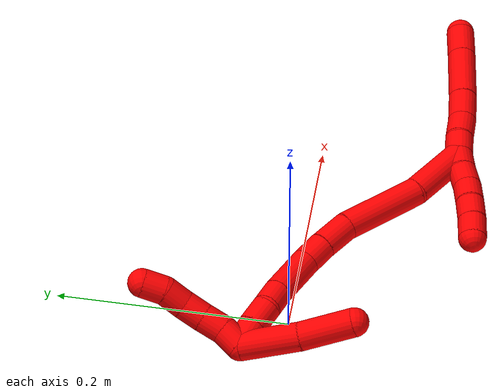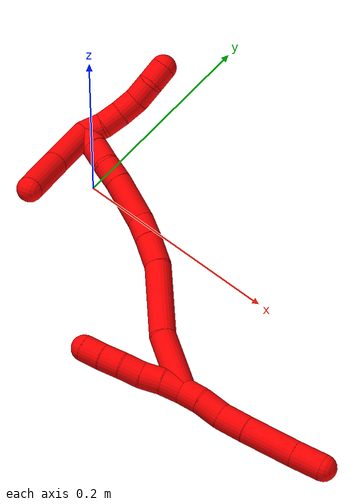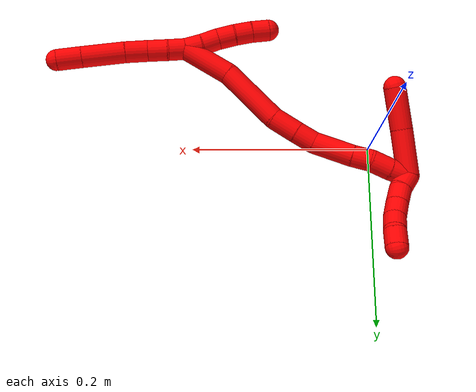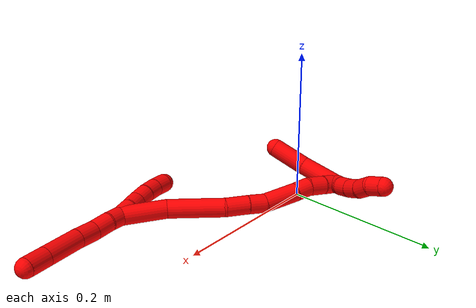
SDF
<sdf version="1.7">
 <world name="default">
  <model name="photoneo_s_sensor">
   <static>1</static>
   <pose>0 0 2 1.57079 1.57079 3.14159</pose>
   <link name="link">
    <inertial><mass>0.1</mass></inertial>
    <sensor name="sensor" type="depth">
     <update_rate>30</update_rate>
     <camera>
      <horizontal_fov>1.22</horizontal_fov>
      <image><width>1920</width><height>1200</height><format>B8G8R8</format></image>
      <clip><near>0.1</near><far>4</far></clip>
      <depth_camera><output>points</output></depth_camera>
     </camera>
     <plugin name="camera_plugin" filename="libgazebo_ros_depth_camera.so">
      <baseline>0.2</baseline>
      <alwaysOn>1</alwaysOn>
      <updateRate>0.0</updateRate>
      <cameraName>camera_ir</cameraName>
      <imageTopicName>/camera/color/image_raw</imageTopicName>
      <cameraInfoTopicName>/camera/color/camera_info</cameraInfoTopicName>
      <depthImageTopicName>/camera/depth/image_raw</depthImageTopicName>
      <depthImageCameraInfoTopicName>/camera/depth/camera_info</depthImageCameraInfoTopicName>
      <pointCloudTopicName>/camera/depth/points</pointCloudTopicName>
      <frameName>fr_optical</frameName>
      <pointCloudCutoff>0.1</pointCloudCutoff>
      <pointCloudCutoffMax>2.0</pointCloudCutoffMax>
      <distortionK1>0</distortionK1>
      <distortionK2>0</distortionK2>
      <distortionK3>0</distortionK3>
      <distortionT1>0</distortionT1>
      <distortionT2>0</distortionT2>
      <CxPrime>0</CxPrime>
      <Cx>0</Cx>
      <Cy>0</Cy>
      <focalLength>0</focalLength>
      <hackBaseline>0</hackBaseline>
     </plugin>
    </sensor>
   </link>
  </model>
  <model name="bin">
   <static>1</static>
   <link name="bottom">
    <collision name="collision-bottom">
     <pose>0 0 -0.01 0 -0 0</pose>
     <geometry><box><size>0.8 0.6 0.02</size></box></geometry>
     <surface>
      <friction><ode><mu>100</mu><mu2>100</mu2></ode></friction>
      <contact><collide_bitmask>65535</collide_bitmask></contact>
     </surface>
    </collision>
   </link>
   <link name="west_wall">
    <collision name="collision-west_wall">
     <pose>-0.41 0 0.1 0 -0 0</pose>
     <geometry><box><size>0.02 0.6 0.2</size></box></geometry>
     <surface>
      <friction><ode><mu>100</mu><mu2>100</mu2></ode></friction>
      <contact><collide_bitmask>65535</collide_bitmask></contact>
     </surface>
    </collision>
   </link>
   <link name="east_wall">
    <collision name="collision-east_wall">
     <pose>0.41 0 0.1 0 -0 0</pose>
     <geometry><box><size>0.02 0.6 0.2</size></box></geometry>
     <surface>
      <friction><ode><mu>100</mu><mu2>100</mu2></ode></friction>
      <contact><collide_bitmask>65535</collide_bitmask></contact>
     </surface>
    </collision>
   </link>
   <link name="south_wall">
    <collision name="collision-south_wall">
     <pose>0 -0.31 0.1 0 -0 0</pose>
     <geometry><box><size>0.8 0.02 0.2</size></box></geometry>
     <surface>
      <friction><ode><mu>100</mu><mu2>100</mu2></ode></friction>
      <contact><collide_bitmask>65535</collide_bitmask></contact>
     </surface>
    </collision>
   </link>
   <link name="north_wall">
    <collision name="collision-north_wall">
     <pose>0 0.31 0.1 0 -0 0</pose>
     <geometry><box><size>0.8 0.02 0.2</size></box></geometry>
     <surface>
      <friction><ode><mu>100</mu><mu2>100</mu2></ode></friction>
      <contact><collide_bitmask>65535</collide_bitmask></contact>
     </surface>
    </collision>
   </link>
  </model>
  <model name="2">
   <static>0</static>
   <link name="2">
    <collision name="collision-cylinder-e_1_2_8">
     <pose>0.000712 -0.001542 0.009906 0.154391 0.070867 0.005484</pose>
     <geometry><cylinder><radius>0.0125</radius><length>0.0201</length></cylinder></geometry>
     <surface>
      <friction><ode><mu>1.16</mu><mu2>1.16</mu2><slip1>0</slip1><slip2>0</slip2></ode></friction>
      <contact><ode><kp>1e+06</kp><kd>1</kd><max_vel>0</max_vel><min_depth>0.001</min_depth></ode></contact>
     </surface>
    </collision>
    <visual name="visual-cylinder-e_1_2_8">
     <pose>0.000712 -0.001542 0.009906 0.154391 0.070867 0.005484</pose>
     <geometry><cylinder><radius>0.0125</radius><length>0.0201</length></cylinder></geometry>
     <material><ambient>1 0 0 1</ambient></material>
    </visual>
    <collision name="collision-cylinder-e_2_8_9">
     <pose>0.004151 -0.004695 0.031283 0.139592 0.231217 0.016236</pose>
     <geometry><cylinder><radius>0.0125</radius><length>0.023802</length></cylinder></geometry>
     <surface>
      <friction><ode><mu>1.16</mu><mu2>1.16</mu2><slip1>0</slip1><slip2>0</slip2></ode></friction>
      <contact><ode><kp>1e+06</kp><kd>1</kd><max_vel>0</max_vel><min_depth>0.001</min_depth></ode></contact>
     </surface>
    </collision>
    <visual name="visual-cylinder-e_2_8_9">
     <pose>0.004151 -0.004695 0.031283 0.139592 0.231217 0.016236</pose>
     <geometry><cylinder><radius>0.0125</radius><length>0.023802</length></cylinder></geometry>
     <material><ambient>1 0 0 1</ambient></material>
    </visual>
    <collision name="collision-cylinder-e_3_9_10">
     <pose>0.007609 -0.008433 0.056043 0.158653 0.054248 0.004313</pose>
     <geometry><cylinder><radius>0.0125</radius><length>0.026955</length></cylinder></geometry>
     <surface>
      <friction><ode><mu>1.16</mu><mu2>1.16</mu2><slip1>0</slip1><slip2>0</slip2></ode></friction>
      <contact><ode><kp>1e+06</kp><kd>1</kd><max_vel>0</max_vel><min_depth>0.001</min_depth></ode></contact>
     </surface>
    </collision>
    <visual name="visual-cylinder-e_3_9_10">
     <pose>0.007609 -0.008433 0.056043 0.158653 0.054248 0.004313</pose>
     <geometry><cylinder><radius>0.0125</radius><length>0.026955</length></cylinder></geometry>
     <material><ambient>1 0 0 1</ambient></material>
    </visual>
    <collision name="collision-cylinder-e_4_10_11">
     <pose>0.009817 -0.013204 0.094206 0.105925 0.059001 0.003129</pose>
     <geometry><cylinder><radius>0.0125</radius><length>0.050118</length></cylinder></geometry>
     <surface>
      <friction><ode><mu>1.16</mu><mu2>1.16</mu2><slip1>0</slip1><slip2>0</slip2></ode></friction>
      <contact><ode><kp>1e+06</kp><kd>1</kd><max_vel>0</max_vel><min_depth>0.001</min_depth></ode></contact>
     </surface>
    </collision>
    <visual name="visual-cylinder-e_4_10_11">
     <pose>0.009817 -0.013204 0.094206 0.105925 0.059001 0.003129</pose>
     <geometry><cylinder><radius>0.0125</radius><length>0.050118</length></cylinder></geometry>
     <material><ambient>1 0 0 1</ambient></material>
    </visual>
    <collision name="collision-cylinder-e_5_11_6">
     <pose>0.011753 -0.0173 0.133514 0.100209 0.031608 0.001585</pose>
     <geometry><cylinder><radius>0.0125</radius><length>0.029026</length></cylinder></geometry>
     <surface>
      <friction><ode><mu>1.16</mu><mu2>1.16</mu2><slip1>0</slip1><slip2>0</slip2></ode></friction>
      <contact><ode><kp>1e+06</kp><kd>1</kd><max_vel>0</max_vel><min_depth>0.001</min_depth></ode></contact>
     </surface>
    </collision>
    <visual name="visual-cylinder-e_5_11_6">
     <pose>0.011753 -0.0173 0.133514 0.100209 0.031608 0.001585</pose>
     <geometry><cylinder><radius>0.0125</radius><length>0.029026</length></cylinder></geometry>
     <material><ambient>1 0 0 1</ambient></material>
    </visual>
    <collision name="collision-cylinder-e_1_2_12">
     <pose>-0.000889 -0.000521 -0.009947 3.08927 -0.088978 -2.07883</pose>
     <geometry><cylinder><radius>0.0125</radius><length>0.02</length></cylinder></geometry>
     <surface>
      <friction><ode><mu>1.16</mu><mu2>1.16</mu2><slip1>0</slip1><slip2>0</slip2></ode></friction>
      <contact><ode><kp>1e+06</kp><kd>1</kd><max_vel>0</max_vel><min_depth>0.001</min_depth></ode></contact>
     </surface>
    </collision>
    <visual name="visual-cylinder-e_1_2_12">
     <pose>-0.000889 -0.000521 -0.009947 3.08927 -0.088978 -2.07883</pose>
     <geometry><cylinder><radius>0.0125</radius><length>0.02</length></cylinder></geometry>
     <material><ambient>1 0 0 1</ambient></material>
    </visual>
    <collision name="collision-cylinder-e_2_12_13">
     <pose>-0.001423 -0.001979 -0.029843 3.04763 0.035439 0.720912</pose>
     <geometry><cylinder><radius>0.0125</radius><length>0.02</length></cylinder></geometry>
     <surface>
      <friction><ode><mu>1.16</mu><mu2>1.16</mu2><slip1>0</slip1><slip2>0</slip2></ode></friction>
      <contact><ode><kp>1e+06</kp><kd>1</kd><max_vel>0</max_vel><min_depth>0.001</min_depth></ode></contact>
     </surface>
    </collision>
    <visual name="visual-cylinder-e_2_12_13">
     <pose>-0.001423 -0.001979 -0.029843 3.04763 0.035439 0.720912</pose>
     <geometry><cylinder><radius>0.0125</radius><length>0.02</length></cylinder></geometry>
     <material><ambient>1 0 0 1</ambient></material>
    </visual>
    <collision name="collision-cylinder-e_3_13_14">
     <pose>-0.002135 -0.003298 -0.049729 3.10326 -0.10685 -2.45323</pose>
     <geometry><cylinder><radius>0.0125</radius><length>0.02</length></cylinder></geometry>
     <surface>
      <friction><ode><mu>1.16</mu><mu2>1.16</mu2><slip1>0</slip1><slip2>0</slip2></ode></friction>
      <contact><ode><kp>1e+06</kp><kd>1</kd><max_vel>0</max_vel><min_depth>0.001</min_depth></ode></contact>
     </surface>
    </collision>
    <visual name="visual-cylinder-e_3_13_14">
     <pose>-0.002135 -0.003298 -0.049729 3.10326 -0.10685 -2.45323</pose>
     <geometry><cylinder><radius>0.0125</radius><length>0.02</length></cylinder></geometry>
     <material><ambient>1 0 0 1</ambient></material>
    </visual>
    <collision name="collision-cylinder-e_4_14_15">
     <pose>-0.003395 -0.003229 -0.069652 -3.09658 -0.019303 0.810178</pose>
     <geometry><cylinder><radius>0.0125</radius><length>0.02</length></cylinder></geometry>
     <surface>
      <friction><ode><mu>1.16</mu><mu2>1.16</mu2><slip1>0</slip1><slip2>0</slip2></ode></friction>
      <contact><ode><kp>1e+06</kp><kd>1</kd><max_vel>0</max_vel><min_depth>0.001</min_depth></ode></contact>
     </surface>
    </collision>
    <visual name="visual-cylinder-e_4_14_15">
     <pose>-0.003395 -0.003229 -0.069652 -3.09658 -0.019303 0.810178</pose>
     <geometry><cylinder><radius>0.0125</radius><length>0.02</length></cylinder></geometry>
     <material><ambient>1 0 0 1</ambient></material>
    </visual>
    <collision name="collision-cylinder-e_5_15_5">
     <pose>-0.003946 -0.001504 -0.089552 -3.01359 -0.035863 0.5457</pose>
     <geometry><cylinder><radius>0.0125</radius><length>0.02</length></cylinder></geometry>
     <surface>
      <friction><ode><mu>1.16</mu><mu2>1.16</mu2><slip1>0</slip1><slip2>0</slip2></ode></friction>
      <contact><ode><kp>1e+06</kp><kd>1</kd><max_vel>0</max_vel><min_depth>0.001</min_depth></ode></contact>
     </surface>
    </collision>
    <visual name="visual-cylinder-e_5_15_5">
     <pose>-0.003946 -0.001504 -0.089552 -3.01359 -0.035863 0.5457</pose>
     <geometry><cylinder><radius>0.0125</radius><length>0.02</length></cylinder></geometry>
     <material><ambient>1 0 0 1</ambient></material>
    </visual>
    <collision name="collision-cylinder-e_1_2_16">
     <pose>-0.013931 0.017064 -0.020214 -2.44049 -0.484711 1.189</pose>
     <geometry><cylinder><radius>0.0125</radius><length>0.059796</length></cylinder></geometry>
     <surface>
      <friction><ode><mu>1.16</mu><mu2>1.16</mu2><slip1>0</slip1><slip2>0</slip2></ode></friction>
      <contact><ode><kp>1e+06</kp><kd>1</kd><max_vel>0</max_vel><min_depth>0.001</min_depth></ode></contact>
     </surface>
    </collision>
    <visual name="visual-cylinder-e_1_2_16">
     <pose>-0.013931 0.017064 -0.020214 -2.44049 -0.484711 1.189</pose>
     <geometry><cylinder><radius>0.0125</radius><length>0.059796</length></cylinder></geometry>
     <material><ambient>1 0 0 1</ambient></material>
    </visual>
    <collision name="collision-cylinder-e_2_16_17">
     <pose>-0.048057 0.0601 -0.058195 -2.17076 -0.570581 1.01486</pose>
     <geometry><cylinder><radius>0.0125</radius><length>0.074779</length></cylinder></geometry>
     <surface>
      <friction><ode><mu>1.16</mu><mu2>1.16</mu2><slip1>0</slip1><slip2>0</slip2></ode></friction>
      <contact><ode><kp>1e+06</kp><kd>1</kd><max_vel>0</max_vel><min_depth>0.001</min_depth></ode></contact>
     </surface>
    </collision>
    <visual name="visual-cylinder-e_2_16_17">
     <pose>-0.048057 0.0601 -0.058195 -2.17076 -0.570581 1.01486</pose>
     <geometry><cylinder><radius>0.0125</radius><length>0.074779</length></cylinder></geometry>
     <material><ambient>1 0 0 1</ambient></material>
    </visual>
    <collision name="collision-cylinder-e_3_17_18">
     <pose>-0.075139 0.09521 -0.086115 -2.40875 -0.466956 1.10957</pose>
     <geometry><cylinder><radius>0.0125</radius><length>0.030598</length></cylinder></geometry>
     <surface>
      <friction><ode><mu>1.16</mu><mu2>1.16</mu2><slip1>0</slip1><slip2>0</slip2></ode></friction>
      <contact><ode><kp>1e+06</kp><kd>1</kd><max_vel>0</max_vel><min_depth>0.001</min_depth></ode></contact>
     </surface>
    </collision>
    <visual name="visual-cylinder-e_3_17_18">
     <pose>-0.075139 0.09521 -0.086115 -2.40875 -0.466956 1.10957</pose>
     <geometry><cylinder><radius>0.0125</radius><length>0.030598</length></cylinder></geometry>
     <material><ambient>1 0 0 1</ambient></material>
    </visual>
    <collision name="collision-cylinder-e_4_18_19">
     <pose>-0.086467 0.111269 -0.104199 -2.42408 -0.39928 0.989625</pose>
     <geometry><cylinder><radius>0.0125</radius><length>0.022847</length></cylinder></geometry>
     <surface>
      <friction><ode><mu>1.16</mu><mu2>1.16</mu2><slip1>0</slip1><slip2>0</slip2></ode></friction>
      <contact><ode><kp>1e+06</kp><kd>1</kd><max_vel>0</max_vel><min_depth>0.001</min_depth></ode></contact>
     </surface>
    </collision>
    <visual name="visual-cylinder-e_4_18_19">
     <pose>-0.086467 0.111269 -0.104199 -2.42408 -0.39928 0.989625</pose>
     <geometry><cylinder><radius>0.0125</radius><length>0.022847</length></cylinder></geometry>
     <material><ambient>1 0 0 1</ambient></material>
    </visual>
    <collision name="collision-cylinder-e_5_19_20">
     <pose>-0.101686 0.127385 -0.130229 -2.67153 -0.488071 1.60987</pose>
     <geometry><cylinder><radius>0.0125</radius><length>0.04597</length></cylinder></geometry>
     <surface>
      <friction><ode><mu>1.16</mu><mu2>1.16</mu2><slip1>0</slip1><slip2>0</slip2></ode></friction>
      <contact><ode><kp>1e+06</kp><kd>1</kd><max_vel>0</max_vel><min_depth>0.001</min_depth></ode></contact>
     </surface>
    </collision>
    <visual name="visual-cylinder-e_5_19_20">
     <pose>-0.101686 0.127385 -0.130229 -2.67153 -0.488071 1.60987</pose>
     <geometry><cylinder><radius>0.0125</radius><length>0.04597</length></cylinder></geometry>
     <material><ambient>1 0 0 1</ambient></material>
    </visual>
    <collision name="collision-cylinder-e_6_20_21">
     <pose>-0.116931 0.140216 -0.157145 -2.75046 -0.438028 1.68708</pose>
     <geometry><cylinder><radius>0.0125</radius><length>0.021064</length></cylinder></geometry>
     <surface>
      <friction><ode><mu>1.16</mu><mu2>1.16</mu2><slip1>0</slip1><slip2>0</slip2></ode></friction>
      <contact><ode><kp>1e+06</kp><kd>1</kd><max_vel>0</max_vel><min_depth>0.001</min_depth></ode></contact>
     </surface>
    </collision>
    <visual name="visual-cylinder-e_6_20_21">
     <pose>-0.116931 0.140216 -0.157145 -2.75046 -0.438028 1.68708</pose>
     <geometry><cylinder><radius>0.0125</radius><length>0.021064</length></cylinder></geometry>
     <material><ambient>1 0 0 1</ambient></material>
    </visual>
    <collision name="collision-cylinder-e_7_21_22">
     <pose>-0.124793 0.150208 -0.174893 -2.52298 -0.30033 0.884401</pose>
     <geometry><cylinder><radius>0.0125</radius><length>0.02295</length></cylinder></geometry>
     <surface>
      <friction><ode><mu>1.16</mu><mu2>1.16</mu2><slip1>0</slip1><slip2>0</slip2></ode></friction>
      <contact><ode><kp>1e+06</kp><kd>1</kd><max_vel>0</max_vel><min_depth>0.001</min_depth></ode></contact>
     </surface>
    </collision>
    <visual name="visual-cylinder-e_7_21_22">
     <pose>-0.124793 0.150208 -0.174893 -2.52298 -0.30033 0.884401</pose>
     <geometry><cylinder><radius>0.0125</radius><length>0.02295</length></cylinder></geometry>
     <material><ambient>1 0 0 1</ambient></material>
    </visual>
    <collision name="collision-cylinder-e_8_22_1">
     <pose>-0.130532 0.162251 -0.192941 -2.58405 -0.214802 0.72049</pose>
     <geometry><cylinder><radius>0.0125</radius><length>0.021997</length></cylinder></geometry>
     <surface>
      <friction><ode><mu>1.16</mu><mu2>1.16</mu2><slip1>0</slip1><slip2>0</slip2></ode></friction>
      <contact><ode><kp>1e+06</kp><kd>1</kd><max_vel>0</max_vel><min_depth>0.001</min_depth></ode></contact>
     </surface>
    </collision>
    <visual name="visual-cylinder-e_8_22_1">
     <pose>-0.130532 0.162251 -0.192941 -2.58405 -0.214802 0.72049</pose>
     <geometry><cylinder><radius>0.0125</radius><length>0.021997</length></cylinder></geometry>
     <material><ambient>1 0 0 1</ambient></material>
    </visual>
    <collision name="collision-cylinder-e_1_1_23">
     <pose>-0.13888 0.171343 -0.194823 -0.439985 -0.643882 0.148893</pose>
     <geometry><cylinder><radius>0.0125</radius><length>0.02</length></cylinder></geometry>
     <surface>
      <friction><ode><mu>1.16</mu><mu2>1.16</mu2><slip1>0</slip1><slip2>0</slip2></ode></friction>
      <contact><ode><kp>1e+06</kp><kd>1</kd><max_vel>0</max_vel><min_depth>0.001</min_depth></ode></contact>
     </surface>
    </collision>
    <visual name="visual-cylinder-e_1_1_23">
     <pose>-0.13888 0.171343 -0.194823 -0.439985 -0.643882 0.148893</pose>
     <geometry><cylinder><radius>0.0125</radius><length>0.02</length></cylinder></geometry>
     <material><ambient>1 0 0 1</ambient></material>
    </visual>
    <collision name="collision-cylinder-e_2_23_24">
     <pose>-0.151792 0.179656 -0.182278 -0.746118 -0.762732 0.31135</pose>
     <geometry><cylinder><radius>0.0125</radius><length>0.02</length></cylinder></geometry>
     <surface>
      <friction><ode><mu>1.16</mu><mu2>1.16</mu2><slip1>0</slip1><slip2>0</slip2></ode></friction>
      <contact><ode><kp>1e+06</kp><kd>1</kd><max_vel>0</max_vel><min_depth>0.001</min_depth></ode></contact>
     </surface>
    </collision>
    <visual name="visual-cylinder-e_2_23_24">
     <pose>-0.151792 0.179656 -0.182278 -0.746118 -0.762732 0.31135</pose>
     <geometry><cylinder><radius>0.0125</radius><length>0.02</length></cylinder></geometry>
     <material><ambient>1 0 0 1</ambient></material>
    </visual>
    <collision name="collision-cylinder-e_3_24_25">
     <pose>-0.166337 0.18875 -0.172054 -0.705514 -0.868947 0.338416</pose>
     <geometry><cylinder><radius>0.0125</radius><length>0.02</length></cylinder></geometry>
     <surface>
      <friction><ode><mu>1.16</mu><mu2>1.16</mu2><slip1>0</slip1><slip2>0</slip2></ode></friction>
      <contact><ode><kp>1e+06</kp><kd>1</kd><max_vel>0</max_vel><min_depth>0.001</min_depth></ode></contact>
     </surface>
    </collision>
    <visual name="visual-cylinder-e_3_24_25">
     <pose>-0.166337 0.18875 -0.172054 -0.705514 -0.868947 0.338416</pose>
     <geometry><cylinder><radius>0.0125</radius><length>0.02</length></cylinder></geometry>
     <material><ambient>1 0 0 1</ambient></material>
    </visual>
    <collision name="collision-cylinder-e_4_25_26">
     <pose>-0.182859 0.195663 -0.16345 -0.63642 -1.09418 0.396028</pose>
     <geometry><cylinder><radius>0.0125</radius><length>0.02</length></cylinder></geometry>
     <surface>
      <friction><ode><mu>1.16</mu><mu2>1.16</mu2><slip1>0</slip1><slip2>0</slip2></ode></friction>
      <contact><ode><kp>1e+06</kp><kd>1</kd><max_vel>0</max_vel><min_depth>0.001</min_depth></ode></contact>
     </surface>
    </collision>
    <visual name="visual-cylinder-e_4_25_26">
     <pose>-0.182859 0.195663 -0.16345 -0.63642 -1.09418 0.396028</pose>
     <geometry><cylinder><radius>0.0125</radius><length>0.02</length></cylinder></geometry>
     <material><ambient>1 0 0 1</ambient></material>
    </visual>
    <collision name="collision-cylinder-e_5_26_4">
     <pose>-0.199454 0.204173 -0.157091 -1.13844 -0.880216 0.585338</pose>
     <geometry><cylinder><radius>0.0125</radius><length>0.02</length></cylinder></geometry>
     <surface>
      <friction><ode><mu>1.16</mu><mu2>1.16</mu2><slip1>0</slip1><slip2>0</slip2></ode></friction>
      <contact><ode><kp>1e+06</kp><kd>1</kd><max_vel>0</max_vel><min_depth>0.001</min_depth></ode></contact>
     </surface>
    </collision>
    <visual name="visual-cylinder-e_5_26_4">
     <pose>-0.199454 0.204173 -0.157091 -1.13844 -0.880216 0.585338</pose>
     <geometry><cylinder><radius>0.0125</radius><length>0.02</length></cylinder></geometry>
     <material><ambient>1 0 0 1</ambient></material>
    </visual>
    <collision name="collision-cylinder-e_1_1_27">
     <pose>-0.123562 0.143527 -0.204717 1.67924 0.36258 0.403135</pose>
     <geometry><cylinder><radius>0.0125</radius><length>0.052521</length></cylinder></geometry>
     <surface>
      <friction><ode><mu>1.16</mu><mu2>1.16</mu2><slip1>0</slip1><slip2>0</slip2></ode></friction>
      <contact><ode><kp>1e+06</kp><kd>1</kd><max_vel>0</max_vel><min_depth>0.001</min_depth></ode></contact>
     </surface>
    </collision>
    <visual name="visual-cylinder-e_1_1_27">
     <pose>-0.123562 0.143527 -0.204717 1.67924 0.36258 0.403135</pose>
     <geometry><cylinder><radius>0.0125</radius><length>0.052521</length></cylinder></geometry>
     <material><ambient>1 0 0 1</ambient></material>
    </visual>
    <collision name="collision-cylinder-e_2_27_3">
     <pose>-0.107798 0.096309 -0.208675 1.62776 0.275146 0.291061</pose>
     <geometry><cylinder><radius>0.0125</radius><length>0.047479</length></cylinder></geometry>
     <surface>
      <friction><ode><mu>1.16</mu><mu2>1.16</mu2><slip1>0</slip1><slip2>0</slip2></ode></friction>
      <contact><ode><kp>1e+06</kp><kd>1</kd><max_vel>0</max_vel><min_depth>0.001</min_depth></ode></contact>
     </surface>
    </collision>
    <visual name="visual-cylinder-e_2_27_3">
     <pose>-0.107798 0.096309 -0.208675 1.62776 0.275146 0.291061</pose>
     <geometry><cylinder><radius>0.0125</radius><length>0.047479</length></cylinder></geometry>
     <material><ambient>1 0 0 1</ambient></material>
    </visual>
    <collision name="collision-sphere-3">
     <pose>-0.101349 0.073499 -0.209975 0 -0 0</pose>
     <geometry><sphere><radius>0.0125</radius></sphere></geometry>
     <surface>
      <friction><ode><mu>1.16</mu><mu2>1.16</mu2><slip1>0</slip1><slip2>0</slip2></ode></friction>
      <contact><ode><kp>1e+06</kp><kd>1</kd><max_vel>0</max_vel><min_depth>0.001</min_depth></ode></contact>
     </surface>
    </collision>
    <visual name="visual-sphere-3">
     <pose>-0.101349 0.073499 -0.209975 0 -0 0</pose>
     <geometry><sphere><radius>0.0125</radius></sphere></geometry>
     <material><ambient>1 0 0 1</ambient></material>
    </visual>
    <collision name="collision-sphere-27">
     <pose>-0.114248 0.119118 -0.207374 0 -0 0</pose>
     <geometry><sphere><radius>0.0125</radius></sphere></geometry>
     <surface>
      <friction><ode><mu>1.16</mu><mu2>1.16</mu2><slip1>0</slip1><slip2>0</slip2></ode></friction>
      <contact><ode><kp>1e+06</kp><kd>1</kd><max_vel>0</max_vel><min_depth>0.001</min_depth></ode></contact>
     </surface>
    </collision>
    <visual name="visual-sphere-27">
     <pose>-0.114248 0.119118 -0.207374 0 -0 0</pose>
     <geometry><sphere><radius>0.0125</radius></sphere></geometry>
     <material><ambient>1 0 0 1</ambient></material>
    </visual>
    <collision name="collision-sphere-4">
     <pose>-0.207162 0.209957 -0.154422 0 -0 0</pose>
     <geometry><sphere><radius>0.0125</radius></sphere></geometry>
     <surface>
      <friction><ode><mu>1.16</mu><mu2>1.16</mu2><slip1>0</slip1><slip2>0</slip2></ode></friction>
      <contact><ode><kp>1e+06</kp><kd>1</kd><max_vel>0</max_vel><min_depth>0.001</min_depth></ode></contact>
     </surface>
    </collision>
    <visual name="visual-sphere-4">
     <pose>-0.207162 0.209957 -0.154422 0 -0 0</pose>
     <geometry><sphere><radius>0.0125</radius></sphere></geometry>
     <material><ambient>1 0 0 1</ambient></material>
    </visual>
    <collision name="collision-sphere-26">
     <pose>-0.191745 0.19839 -0.15976 0 -0 0</pose>
     <geometry><sphere><radius>0.0125</radius></sphere></geometry>
     <surface>
      <friction><ode><mu>1.16</mu><mu2>1.16</mu2><slip1>0</slip1><slip2>0</slip2></ode></friction>
      <contact><ode><kp>1e+06</kp><kd>1</kd><max_vel>0</max_vel><min_depth>0.001</min_depth></ode></contact>
     </surface>
    </collision>
    <visual name="visual-sphere-26">
     <pose>-0.191745 0.19839 -0.15976 0 -0 0</pose>
     <geometry><sphere><radius>0.0125</radius></sphere></geometry>
     <material><ambient>1 0 0 1</ambient></material>
    </visual>
    <collision name="collision-sphere-25">
     <pose>-0.173974 0.192937 -0.167139 0 -0 0</pose>
     <geometry><sphere><radius>0.0125</radius></sphere></geometry>
     <surface>
      <friction><ode><mu>1.16</mu><mu2>1.16</mu2><slip1>0</slip1><slip2>0</slip2></ode></friction>
      <contact><ode><kp>1e+06</kp><kd>1</kd><max_vel>0</max_vel><min_depth>0.001</min_depth></ode></contact>
     </surface>
    </collision>
    <visual name="visual-sphere-25">
     <pose>-0.173974 0.192937 -0.167139 0 -0 0</pose>
     <geometry><sphere><radius>0.0125</radius></sphere></geometry>
     <material><ambient>1 0 0 1</ambient></material>
    </visual>
    <collision name="collision-sphere-24">
     <pose>-0.158701 0.184564 -0.176969 0 -0 0</pose>
     <geometry><sphere><radius>0.0125</radius></sphere></geometry>
     <surface>
      <friction><ode><mu>1.16</mu><mu2>1.16</mu2><slip1>0</slip1><slip2>0</slip2></ode></friction>
      <contact><ode><kp>1e+06</kp><kd>1</kd><max_vel>0</max_vel><min_depth>0.001</min_depth></ode></contact>
     </surface>
    </collision>
    <visual name="visual-sphere-24">
     <pose>-0.158701 0.184564 -0.176969 0 -0 0</pose>
     <geometry><sphere><radius>0.0125</radius></sphere></geometry>
     <material><ambient>1 0 0 1</ambient></material>
    </visual>
    <collision name="collision-sphere-23">
     <pose>-0.144883 0.174749 -0.187587 0 -0 0</pose>
     <geometry><sphere><radius>0.0125</radius></sphere></geometry>
     <surface>
      <friction><ode><mu>1.16</mu><mu2>1.16</mu2><slip1>0</slip1><slip2>0</slip2></ode></friction>
      <contact><ode><kp>1e+06</kp><kd>1</kd><max_vel>0</max_vel><min_depth>0.001</min_depth></ode></contact>
     </surface>
    </collision>
    <visual name="visual-sphere-23">
     <pose>-0.144883 0.174749 -0.187587 0 -0 0</pose>
     <geometry><sphere><radius>0.0125</radius></sphere></geometry>
     <material><ambient>1 0 0 1</ambient></material>
    </visual>
    <collision name="collision-sphere-1">
     <pose>-0.132877 0.167936 -0.202059 0 -0 0</pose>
     <geometry><sphere><radius>0.0125</radius></sphere></geometry>
     <surface>
      <friction><ode><mu>1.16</mu><mu2>1.16</mu2><slip1>0</slip1><slip2>0</slip2></ode></friction>
      <contact><ode><kp>1e+06</kp><kd>1</kd><max_vel>0</max_vel><min_depth>0.001</min_depth></ode></contact>
     </surface>
    </collision>
    <visual name="visual-sphere-1">
     <pose>-0.132877 0.167936 -0.202059 0 -0 0</pose>
     <geometry><sphere><radius>0.0125</radius></sphere></geometry>
     <material><ambient>1 0 0 1</ambient></material>
    </visual>
    <collision name="collision-sphere-22">
     <pose>-0.128188 0.156565 -0.183823 0 -0 0</pose>
     <geometry><sphere><radius>0.0125</radius></sphere></geometry>
     <surface>
      <friction><ode><mu>1.16</mu><mu2>1.16</mu2><slip1>0</slip1><slip2>0</slip2></ode></friction>
      <contact><ode><kp>1e+06</kp><kd>1</kd><max_vel>0</max_vel><min_depth>0.001</min_depth></ode></contact>
     </surface>
    </collision>
    <visual name="visual-sphere-22">
     <pose>-0.128188 0.156565 -0.183823 0 -0 0</pose>
     <geometry><sphere><radius>0.0125</radius></sphere></geometry>
     <material><ambient>1 0 0 1</ambient></material>
    </visual>
    <collision name="collision-sphere-21">
     <pose>-0.121399 0.143852 -0.165962 0 -0 0</pose>
     <geometry><sphere><radius>0.0125</radius></sphere></geometry>
     <surface>
      <friction><ode><mu>1.16</mu><mu2>1.16</mu2><slip1>0</slip1><slip2>0</slip2></ode></friction>
      <contact><ode><kp>1e+06</kp><kd>1</kd><max_vel>0</max_vel><min_depth>0.001</min_depth></ode></contact>
     </surface>
    </collision>
    <visual name="visual-sphere-21">
     <pose>-0.121399 0.143852 -0.165962 0 -0 0</pose>
     <geometry><sphere><radius>0.0125</radius></sphere></geometry>
     <material><ambient>1 0 0 1</ambient></material>
    </visual>
    <collision name="collision-sphere-6">
     <pose>0.012212 -0.018751 0.147947 0 -0 0</pose>
     <geometry><sphere><radius>0.0125</radius></sphere></geometry>
     <surface>
      <friction><ode><mu>1.16</mu><mu2>1.16</mu2><slip1>0</slip1><slip2>0</slip2></ode></friction>
      <contact><ode><kp>1e+06</kp><kd>1</kd><max_vel>0</max_vel><min_depth>0.001</min_depth></ode></contact>
     </surface>
    </collision>
    <visual name="visual-sphere-6">
     <pose>0.012212 -0.018751 0.147947 0 -0 0</pose>
     <geometry><sphere><radius>0.0125</radius></sphere></geometry>
     <material><ambient>1 0 0 1</ambient></material>
    </visual>
    <collision name="collision-sphere-11">
     <pose>0.011295 -0.015849 0.119081 0 -0 0</pose>
     <geometry><sphere><radius>0.0125</radius></sphere></geometry>
     <surface>
      <friction><ode><mu>1.16</mu><mu2>1.16</mu2><slip1>0</slip1><slip2>0</slip2></ode></friction>
      <contact><ode><kp>1e+06</kp><kd>1</kd><max_vel>0</max_vel><min_depth>0.001</min_depth></ode></contact>
     </surface>
    </collision>
    <visual name="visual-sphere-11">
     <pose>0.011295 -0.015849 0.119081 0 -0 0</pose>
     <geometry><sphere><radius>0.0125</radius></sphere></geometry>
     <material><ambient>1 0 0 1</ambient></material>
    </visual>
    <collision name="collision-sphere-10">
     <pose>0.008339 -0.010559 0.069331 0 -0 0</pose>
     <geometry><sphere><radius>0.0125</radius></sphere></geometry>
     <surface>
      <friction><ode><mu>1.16</mu><mu2>1.16</mu2><slip1>0</slip1><slip2>0</slip2></ode></friction>
      <contact><ode><kp>1e+06</kp><kd>1</kd><max_vel>0</max_vel><min_depth>0.001</min_depth></ode></contact>
     </surface>
    </collision>
    <visual name="visual-sphere-10">
     <pose>0.008339 -0.010559 0.069331 0 -0 0</pose>
     <geometry><sphere><radius>0.0125</radius></sphere></geometry>
     <material><ambient>1 0 0 1</ambient></material>
    </visual>
    <collision name="collision-sphere-9">
     <pose>0.006878 -0.006307 0.042754 0 -0 0</pose>
     <geometry><sphere><radius>0.0125</radius></sphere></geometry>
     <surface>
      <friction><ode><mu>1.16</mu><mu2>1.16</mu2><slip1>0</slip1><slip2>0</slip2></ode></friction>
      <contact><ode><kp>1e+06</kp><kd>1</kd><max_vel>0</max_vel><min_depth>0.001</min_depth></ode></contact>
     </surface>
    </collision>
    <visual name="visual-sphere-9">
     <pose>0.006878 -0.006307 0.042754 0 -0 0</pose>
     <geometry><sphere><radius>0.0125</radius></sphere></geometry>
     <material><ambient>1 0 0 1</ambient></material>
    </visual>
    <collision name="collision-sphere-2">
     <geometry><sphere><radius>0.0125</radius></sphere></geometry>
     <surface>
      <friction><ode><mu>1.16</mu><mu2>1.16</mu2><slip1>0</slip1><slip2>0</slip2></ode></friction>
      <contact><ode><kp>1e+06</kp><kd>1</kd><max_vel>0</max_vel><min_depth>0.001</min_depth></ode></contact>
     </surface>
    </collision>
    <visual name="visual-sphere-2">
     <geometry><sphere><radius>0.0125</radius></sphere></geometry>
     <material><ambient>1 0 0 1</ambient></material>
    </visual>
    <collision name="collision-sphere-19">
     <pose>-0.090908 0.118189 -0.112129 0 -0 0</pose>
     <geometry><sphere><radius>0.0125</radius></sphere></geometry>
     <surface>
      <friction><ode><mu>1.16</mu><mu2>1.16</mu2><slip1>0</slip1><slip2>0</slip2></ode></friction>
      <contact><ode><kp>1e+06</kp><kd>1</kd><max_vel>0</max_vel><min_depth>0.001</min_depth></ode></contact>
     </surface>
    </collision>
    <visual name="visual-sphere-19">
     <pose>-0.090908 0.118189 -0.112129 0 -0 0</pose>
     <geometry><sphere><radius>0.0125</radius></sphere></geometry>
     <material><ambient>1 0 0 1</ambient></material>
    </visual>
    <collision name="collision-sphere-8">
     <pose>0.001423 -0.003083 0.019811 0 -0 0</pose>
     <geometry><sphere><radius>0.0125</radius></sphere></geometry>
     <surface>
      <friction><ode><mu>1.16</mu><mu2>1.16</mu2><slip1>0</slip1><slip2>0</slip2></ode></friction>
      <contact><ode><kp>1e+06</kp><kd>1</kd><max_vel>0</max_vel><min_depth>0.001</min_depth></ode></contact>
     </surface>
    </collision>
    <visual name="visual-sphere-8">
     <pose>0.001423 -0.003083 0.019811 0 -0 0</pose>
     <geometry><sphere><radius>0.0125</radius></sphere></geometry>
     <material><ambient>1 0 0 1</ambient></material>
    </visual>
    <collision name="collision-sphere-12">
     <pose>-0.001777 -0.001042 -0.019894 0 -0 0</pose>
     <geometry><sphere><radius>0.0125</radius></sphere></geometry>
     <surface>
      <friction><ode><mu>1.16</mu><mu2>1.16</mu2><slip1>0</slip1><slip2>0</slip2></ode></friction>
      <contact><ode><kp>1e+06</kp><kd>1</kd><max_vel>0</max_vel><min_depth>0.001</min_depth></ode></contact>
     </surface>
    </collision>
    <visual name="visual-sphere-12">
     <pose>-0.001777 -0.001042 -0.019894 0 -0 0</pose>
     <geometry><sphere><radius>0.0125</radius></sphere></geometry>
     <material><ambient>1 0 0 1</ambient></material>
    </visual>
    <collision name="collision-sphere-13">
     <pose>-0.001069 -0.002917 -0.039793 0 -0 0</pose>
     <geometry><sphere><radius>0.0125</radius></sphere></geometry>
     <surface>
      <friction><ode><mu>1.16</mu><mu2>1.16</mu2><slip1>0</slip1><slip2>0</slip2></ode></friction>
      <contact><ode><kp>1e+06</kp><kd>1</kd><max_vel>0</max_vel><min_depth>0.001</min_depth></ode></contact>
     </surface>
    </collision>
    <visual name="visual-sphere-13">
     <pose>-0.001069 -0.002917 -0.039793 0 -0 0</pose>
     <geometry><sphere><radius>0.0125</radius></sphere></geometry>
     <material><ambient>1 0 0 1</ambient></material>
    </visual>
    <collision name="collision-sphere-14">
     <pose>-0.003202 -0.003679 -0.059664 0 -0 0</pose>
     <geometry><sphere><radius>0.0125</radius></sphere></geometry>
     <surface>
      <friction><ode><mu>1.16</mu><mu2>1.16</mu2><slip1>0</slip1><slip2>0</slip2></ode></friction>
      <contact><ode><kp>1e+06</kp><kd>1</kd><max_vel>0</max_vel><min_depth>0.001</min_depth></ode></contact>
     </surface>
    </collision>
    <visual name="visual-sphere-14">
     <pose>-0.003202 -0.003679 -0.059664 0 -0 0</pose>
     <geometry><sphere><radius>0.0125</radius></sphere></geometry>
     <material><ambient>1 0 0 1</ambient></material>
    </visual>
    <collision name="collision-sphere-15">
     <pose>-0.003588 -0.002779 -0.07964 0 -0 0</pose>
     <geometry><sphere><radius>0.0125</radius></sphere></geometry>
     <surface>
      <friction><ode><mu>1.16</mu><mu2>1.16</mu2><slip1>0</slip1><slip2>0</slip2></ode></friction>
      <contact><ode><kp>1e+06</kp><kd>1</kd><max_vel>0</max_vel><min_depth>0.001</min_depth></ode></contact>
     </surface>
    </collision>
    <visual name="visual-sphere-15">
     <pose>-0.003588 -0.002779 -0.07964 0 -0 0</pose>
     <geometry><sphere><radius>0.0125</radius></sphere></geometry>
     <material><ambient>1 0 0 1</ambient></material>
    </visual>
    <collision name="collision-sphere-5">
     <pose>-0.004305 -0.000228 -0.099464 0 -0 0</pose>
     <geometry><sphere><radius>0.0125</radius></sphere></geometry>
     <surface>
      <friction><ode><mu>1.16</mu><mu2>1.16</mu2><slip1>0</slip1><slip2>0</slip2></ode></friction>
      <contact><ode><kp>1e+06</kp><kd>1</kd><max_vel>0</max_vel><min_depth>0.001</min_depth></ode></contact>
     </surface>
    </collision>
    <visual name="visual-sphere-5">
     <pose>-0.004305 -0.000228 -0.099464 0 -0 0</pose>
     <geometry><sphere><radius>0.0125</radius></sphere></geometry>
     <material><ambient>1 0 0 1</ambient></material>
    </visual>
    <collision name="collision-sphere-16">
     <pose>-0.027862 0.034129 -0.040429 0 -0 0</pose>
     <geometry><sphere><radius>0.0125</radius></sphere></geometry>
     <surface>
      <friction><ode><mu>1.16</mu><mu2>1.16</mu2><slip1>0</slip1><slip2>0</slip2></ode></friction>
      <contact><ode><kp>1e+06</kp><kd>1</kd><max_vel>0</max_vel><min_depth>0.001</min_depth></ode></contact>
     </surface>
    </collision>
    <visual name="visual-sphere-16">
     <pose>-0.027862 0.034129 -0.040429 0 -0 0</pose>
     <geometry><sphere><radius>0.0125</radius></sphere></geometry>
     <material><ambient>1 0 0 1</ambient></material>
    </visual>
    <collision name="collision-sphere-17">
     <pose>-0.068252 0.086071 -0.075962 0 -0 0</pose>
     <geometry><sphere><radius>0.0125</radius></sphere></geometry>
     <surface>
      <friction><ode><mu>1.16</mu><mu2>1.16</mu2><slip1>0</slip1><slip2>0</slip2></ode></friction>
      <contact><ode><kp>1e+06</kp><kd>1</kd><max_vel>0</max_vel><min_depth>0.001</min_depth></ode></contact>
     </surface>
    </collision>
    <visual name="visual-sphere-17">
     <pose>-0.068252 0.086071 -0.075962 0 -0 0</pose>
     <geometry><sphere><radius>0.0125</radius></sphere></geometry>
     <material><ambient>1 0 0 1</ambient></material>
    </visual>
    <collision name="collision-sphere-18">
     <pose>-0.082026 0.104349 -0.096269 0 -0 0</pose>
     <geometry><sphere><radius>0.0125</radius></sphere></geometry>
     <surface>
      <friction><ode><mu>1.16</mu><mu2>1.16</mu2><slip1>0</slip1><slip2>0</slip2></ode></friction>
      <contact><ode><kp>1e+06</kp><kd>1</kd><max_vel>0</max_vel><min_depth>0.001</min_depth></ode></contact>
     </surface>
    </collision>
    <visual name="visual-sphere-18">
     <pose>-0.082026 0.104349 -0.096269 0 -0 0</pose>
     <geometry><sphere><radius>0.0125</radius></sphere></geometry>
     <material><ambient>1 0 0 1</ambient></material>
    </visual>
    <collision name="collision-sphere-20">
     <pose>-0.112464 0.13658 -0.148328 0 -0 0</pose>
     <geometry><sphere><radius>0.0125</radius></sphere></geometry>
     <surface>
      <friction><ode><mu>1.16</mu><mu2>1.16</mu2><slip1>0</slip1><slip2>0</slip2></ode></friction>
      <contact><ode><kp>1e+06</kp><kd>1</kd><max_vel>0</max_vel><min_depth>0.001</min_depth></ode></contact>
     </surface>
    </collision>
    <visual name="visual-sphere-20">
     <pose>-0.112464 0.13658 -0.148328 0 -0 0</pose>
     <geometry><sphere><radius>0.0125</radius></sphere></geometry>
     <material><ambient>1 0 0 1</ambient></material>
    </visual>
    <inertial>
     <pose>-0.065404 0.074605 -0.080143 0 -0 0</pose>
     <mass>0.75</mass>
     <inertia><ixx>0.000135</ixx><ixy>0</ixy><ixz>0</ixz><iyy>0.000109</iyy><iyz>0</iyz><izz>1e-06</izz></inertia>
    </inertial>
   </link>
   <pose>0.208956 -0.120305 0.011339 -1.52067 0.935475 -1.27117</pose>
  </model>
 </world>
</sdf>
